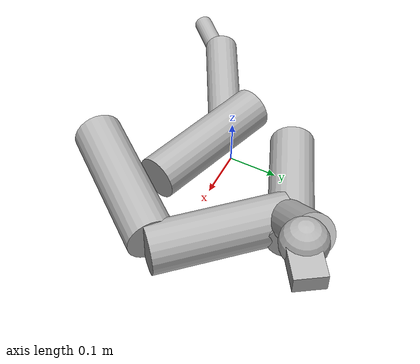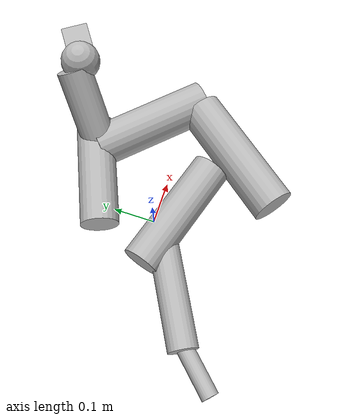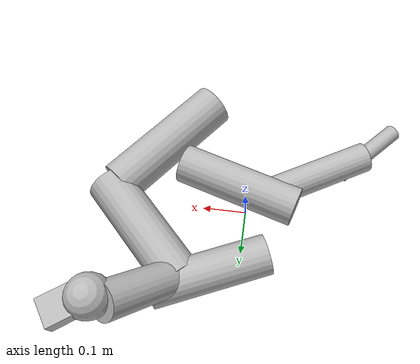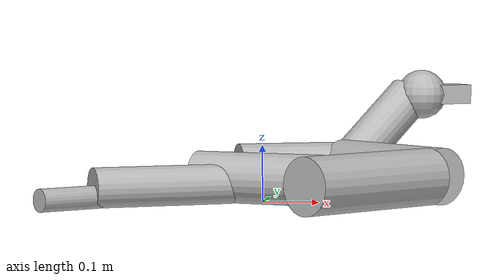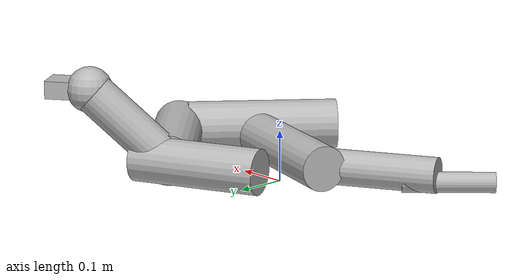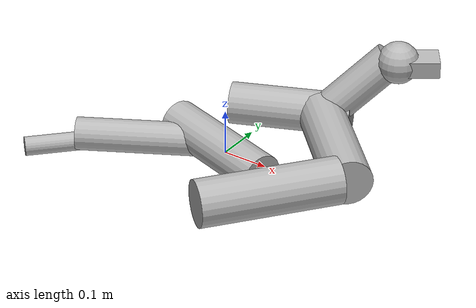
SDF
<?xml version="1.0" ?>
<sdf version="1.6">
  <model name="snake">
    <static>true</static>
    <link name="body">
      <!-- TAIL TIP -->
      <visual name="tail_visual">
        <pose>-0.28 -0.18 0.02 0 1.57 0.8</pose>
        <geometry>
          <cylinder>
            <radius>0.02</radius>
            <length>0.18</length>
          </cylinder>
        </geometry>
        <material>
          <script>
            <uri>model://snake/materials/scripts</uri>
            <uri>model://snake/materials/textures</uri>
            <name>Animal/Snake</name>
          </script>
        </material>
      </visual>

      <!-- BODY SEGMENT 1 -->
      <visual name="body1_visual">
        <pose>-0.16 -0.10 0.035 0 1.57 0.5</pose>
        <geometry>
          <cylinder>
            <radius>0.035</radius>
            <length>0.25</length>
          </cylinder>
        </geometry>
        <material>
          <script>
            <uri>model://snake/materials/scripts</uri>
            <uri>model://snake/materials/textures</uri>
            <name>Animal/Snake</name>
          </script>
        </material>
      </visual>

      <!-- BODY SEGMENT 2 -->
      <visual name="body2_visual">
        <pose>0.02 -0.05 0.045 0 1.57 -0.3</pose>
        <geometry>
          <cylinder>
            <radius>0.045</radius>
            <length>0.28</length>
          </cylinder>
        </geometry>
        <material>
          <script>
            <uri>model://snake/materials/scripts</uri>
            <uri>model://snake/materials/textures</uri>
            <name>Animal/Snake</name>
          </script>
        </material>
      </visual>

      <!-- BODY SEGMENT 3 -->
      <visual name="body3_visual">
        <pose>0.20 -0.14 0.05 0 1.57 0.9</pose>
        <geometry>
          <cylinder>
            <radius>0.05</radius>
            <length>0.30</length>
          </cylinder>
        </geometry>
        <material>
          <script>
            <uri>model://snake/materials/scripts</uri>
            <uri>model://snake/materials/textures</uri>
            <name>Animal/Snake</name>
          </script>
        </material>
      </visual>

      <!-- BODY SEGMENT 4 -->
      <visual name="body4_visual">
        <pose>0.22 0.08 0.05 0 1.57 -0.8</pose>
        <geometry>
          <cylinder>
            <radius>0.05</radius>
            <length>0.28</length>
          </cylinder>
        </geometry>
        <material>
          <script>
            <uri>model://snake/materials/scripts</uri>
            <uri>model://snake/materials/textures</uri>
            <name>Animal/Snake</name>
          </script>
        </material>
      </visual>

      <!-- BODY SEGMENT 5 -->
      <visual name="body5_visual">
        <pose>0.06 0.16 0.05 0 1.57 0.4</pose>
        <geometry>
          <cylinder>
            <radius>0.045</radius>
            <length>0.26</length>
          </cylinder>
        </geometry>
        <material>
          <script>
            <uri>model://snake/materials/scripts</uri>
            <uri>model://snake/materials/textures</uri>
            <name>Animal/Snake</name>
          </script>
        </material>
      </visual>

      <!-- RAISED NECK -->
      <visual name="neck_visual">
        <pose>0.18 0.22 0.11 -0.5 0.7 0</pose>
        <geometry>
          <cylinder>
            <radius>0.04</radius>
            <length>0.20</length>
          </cylinder>
        </geometry>
        <material>
          <script>
            <uri>model://snake/materials/scripts</uri>
            <uri>model://snake/materials/textures</uri>
            <name>Animal/Snake</name>
          </script>
        </material>
      </visual>

      <!-- HEAD CRANIUM -->
      <visual name="head_visual">
        <pose>0.26 0.26 0.18 0 0 0</pose>
        <geometry>
          <sphere>
            <radius>0.045</radius>
          </sphere>
        </geometry>
        <material>
          <script>
            <uri>model://snake/materials/scripts</uri>
            <uri>model://snake/materials/textures</uri>
            <name>Animal/Snake</name>
          </script>
        </material>
      </visual>

      <!-- TRIANGULAR SNOUT -->
      <visual name="snout_visual">
        <pose>0.30 0.28 0.18 0 0 0.6</pose>
        <geometry>
          <box>
            <size>0.08 0.06 0.035</size>
          </box>
        </geometry>
        <material>
          <script>
            <uri>model://snake/materials/scripts</uri>
            <uri>model://snake/materials/textures</uri>
            <name>Animal/Snake</name>
          </script>
        </material>
      </visual>

      <!-- OVERALL COLLISION BOUNDING BOX -->
      <collision name="snake_collision">
        <pose>0.05 0.05 0.10 0 0 0</pose>
        <geometry>
          <box>
            <size>0.70 0.65 0.25</size>
          </box>
        </geometry>
      </collision>
    </link>
  </model>
</sdf>
